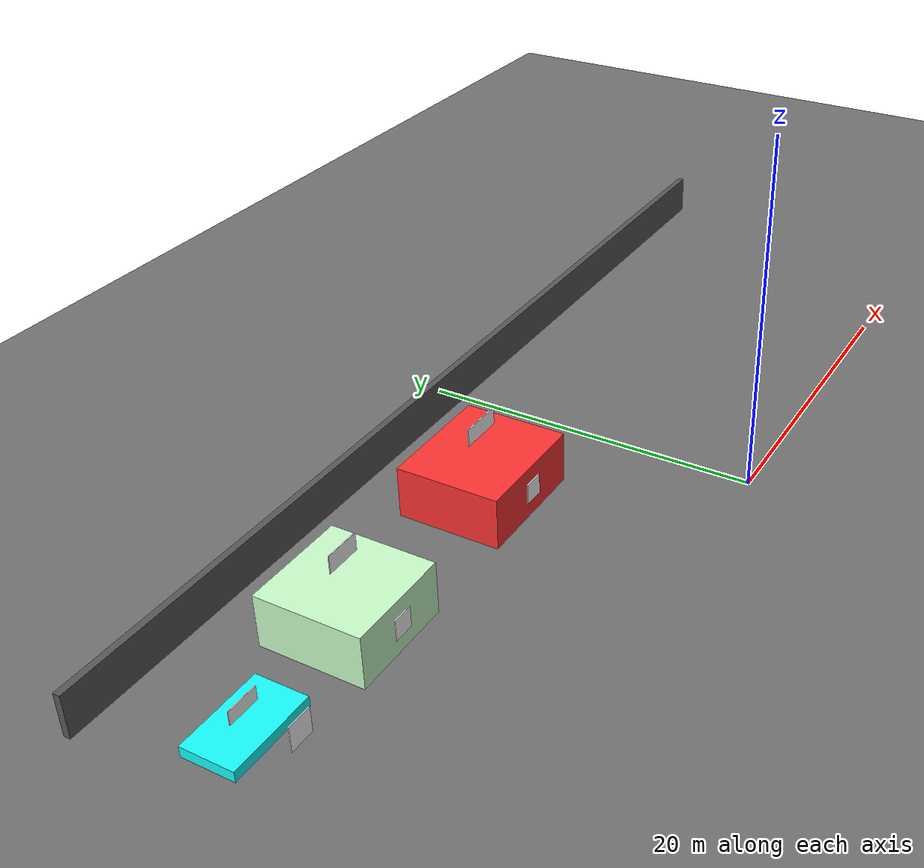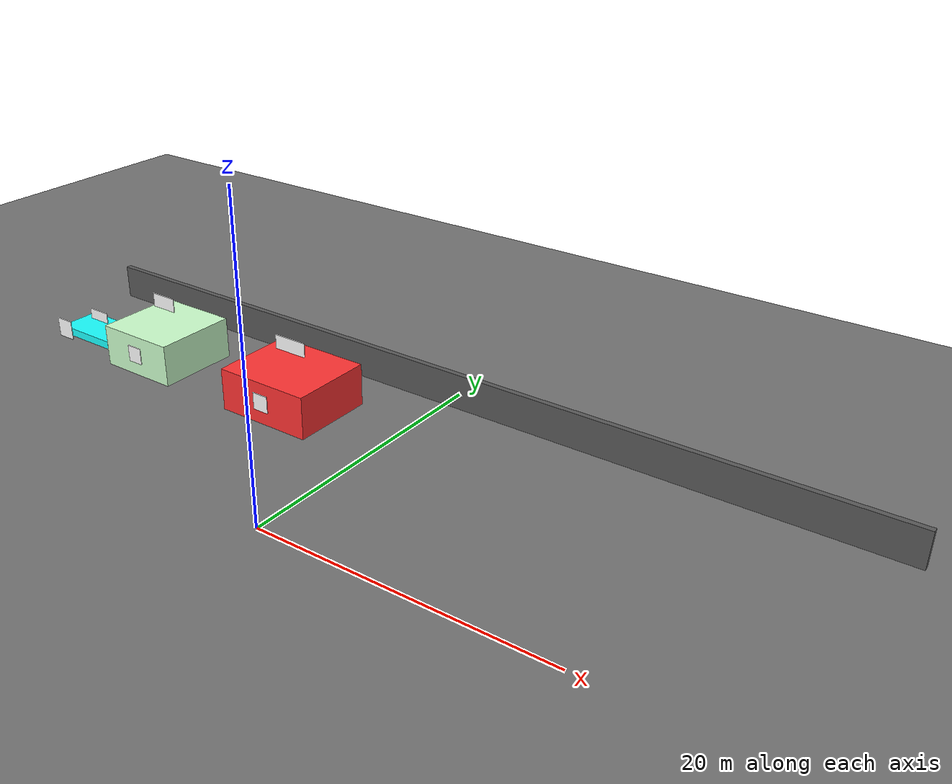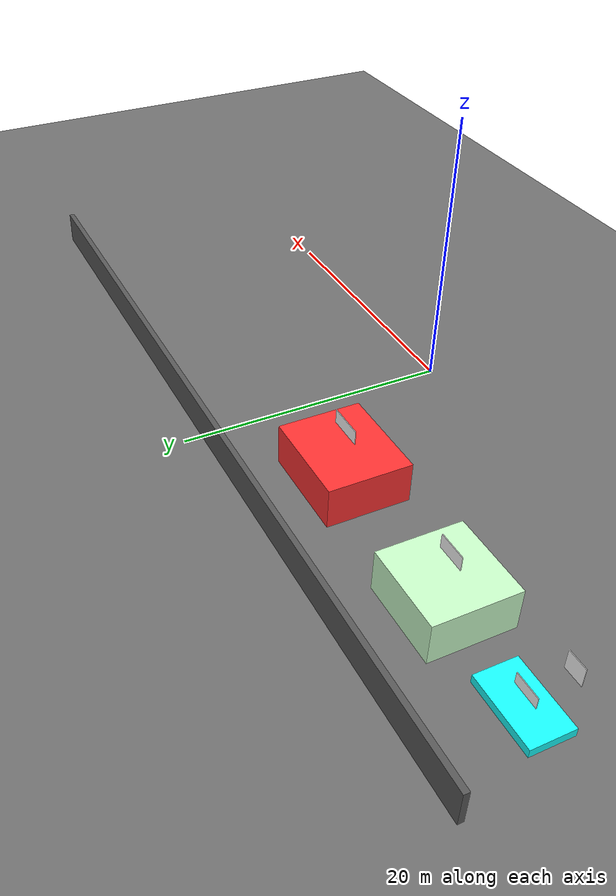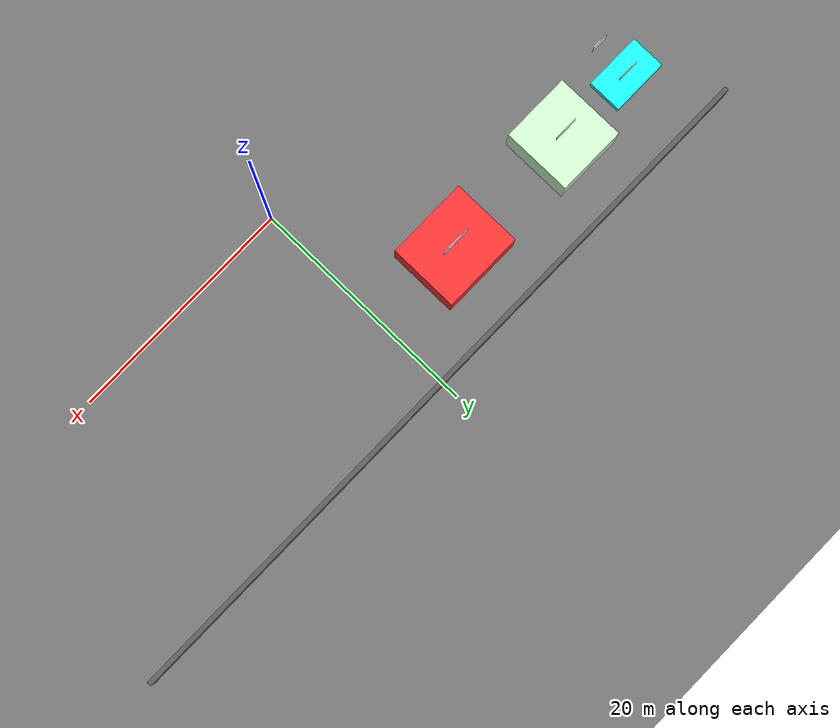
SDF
<sdf version="1.7">
 <world name="town_qr_world">
  <model name="ground_plane">
   <static>true</static>
   <link name="link">
    <collision name="collision">
     <geometry><plane><normal>0 0 1</normal><size>80 80</size></plane></geometry>
    </collision>
    <visual name="visual">
     <geometry><plane><normal>0 0 1</normal><size>80 80</size></plane></geometry>
     <material><ambient>0.45 0.45 0.45 1</ambient><diffuse>0.45 0.45 0.45 1</diffuse></material>
    </visual>
   </link>
  </model>
  <model name="north_wall">
   <static>true</static>
   <pose>0 18.5 1.25 0 0 0</pose>
   <link name="link">
    <collision name="collision"><geometry><box><size>63 0.4 2.5</size></box></geometry></collision>
    <visual name="visual">
     <geometry><box><size>63 0.4 2.5</size></box></geometry>
     <material><ambient>0.35 0.35 0.35 1</ambient><diffuse>0.35 0.35 0.35 1</diffuse></material>
    </visual>
   </link>
  </model>
  <model name="pharmacy">
   <static>true</static>
   <pose>-20 12 1.5 0 0 0</pose>
   <link name="link">
    <collision name="collision"><geometry><box><size>6 6 3</size></box></geometry></collision>
    <visual name="visual">
     <geometry><box><size>6 6 3</size></box></geometry>
     <material><ambient>0.8 1.0 0.8 1</ambient><diffuse>0.8 1.0 0.8 1</diffuse></material>
    </visual>
   </link>
  </model>
  <model name="firefighting_center">
   <static>true</static>
   <pose>-8 12 1.5 0 0 0</pose>
   <link name="link">
    <collision name="collision"><geometry><box><size>7 6 3</size></box></geometry></collision>
    <visual name="visual">
     <geometry><box><size>7 6 3</size></box></geometry>
     <material><ambient>1.0 0.2 0.2 1</ambient><diffuse>1.0 0.2 0.2 1</diffuse></material>
    </visual>
   </link>
  </model>
  <model name="docking_station">
   <static>true</static>
   <pose>-27.5 12 0.3 0 0 0</pose>
   <link name="link">
    <collision name="collision"><geometry><box><size>5 3 0.6</size></box></geometry></collision>
    <visual name="visual">
     <geometry><box><size>5 3 0.6</size></box></geometry>
     <material><ambient>0.1 1.0 1.0 1</ambient><diffuse>0.1 1.0 1.0 1</diffuse></material>
    </visual>
   </link>
  </model>
  <model name="qr_pharmacy">
   <static>true</static>
   <pose>-20 8.9 1.6 0 0 0</pose>
   <link name="link">
    <visual name="qr_visual">
     <geometry><box><size>1.2 0.05 1.2</size></box></geometry>
     <material>
      <ambient>1 1 1 1</ambient>
      <diffuse>1 1 1 1</diffuse>
      <pbr><metal><albedo_map>file:///home/adammanasfi/AMR_PROJECT/qr_codes/pharmacy.png</albedo_map></metal></pbr>
     </material>
    </visual>
   </link>
  </model>
  <model name="qr_firefighting_center">
   <static>true</static>
   <pose>-8 8.9 1.6 0 0 0</pose>
   <link name="link">
    <visual name="qr_visual">
     <geometry><box><size>1.2 0.05 1.2</size></box></geometry>
     <material>
      <ambient>1 1 1 1</ambient>
      <diffuse>1 1 1 1</diffuse>
      <pbr>
       <metal><albedo_map>file:///home/adammanasfi/AMR_PROJECT/qr_codes/fire_center.png</albedo_map></metal>
      </pbr>
     </material>
    </visual>
   </link>
  </model>
  <model name="qr_docking_station">
   <static>true</static>
   <pose>-27.5 8.9 1.6 0 0 0</pose>
   <link name="link">
    <visual name="qr_visual">
     <geometry><box><size>1.4 0.05 1.4</size></box></geometry>
     <material>
      <ambient>1 1 1 1</ambient>
      <diffuse>1 1 1 1</diffuse>
      <pbr>
       <metal><albedo_map>file:///home/adammanasfi/AMR_PROJECT/qr_codes/docking_station.png</albedo_map></metal>
      </pbr>
     </material>
    </visual>
   </link>
  </model>
  <model name="label_pharmacy">
   <static>true</static>
   <pose>-20 12 4.5 0 0 0</pose>
   <link name="link">
    <visual name="visual">
     <geometry><box><size>2.0 0.05 1.0</size></box></geometry>
     <material>
      <ambient>1 1 1 1</ambient>
      <diffuse>1 1 1 1</diffuse>
      <pbr>
       <metal><albedo_map>file:///home/adammanasfi/AMR_PROJECT/labels/label_pharmacy.png</albedo_map></metal>
      </pbr>
     </material>
    </visual>
   </link>
  </model>
  <model name="label_firefighting_center">
   <static>true</static>
   <pose>-8 12 4.5 0 0 0</pose>
   <link name="link">
    <visual name="visual">
     <geometry><box><size>2.5 0.05 1.0</size></box></geometry>
     <material>
      <ambient>1 1 1 1</ambient>
      <diffuse>1 1 1 1</diffuse>
      <pbr>
       <metal>
        <albedo_map>file:///home/adammanasfi/AMR_PROJECT/labels/label_firefighting_center.png</albedo_map>
       </metal>
      </pbr>
     </material>
    </visual>
   </link>
  </model>
  <model name="label_docking_station">
   <static>true</static>
   <pose>-27.5 12 1.5 0 0 0</pose>
   <link name="link">
    <visual name="visual">
     <geometry><box><size>1.8 0.05 0.8</size></box></geometry>
     <material>
      <ambient>1 1 1 1</ambient>
      <diffuse>1 1 1 1</diffuse>
      <pbr>
       <metal><albedo_map>file:///home/adammanasfi/AMR_PROJECT/labels/label_docking_station.png</albedo_map></metal>
      </pbr>
     </material>
    </visual>
   </link>
  </model>
 </world>
</sdf>
